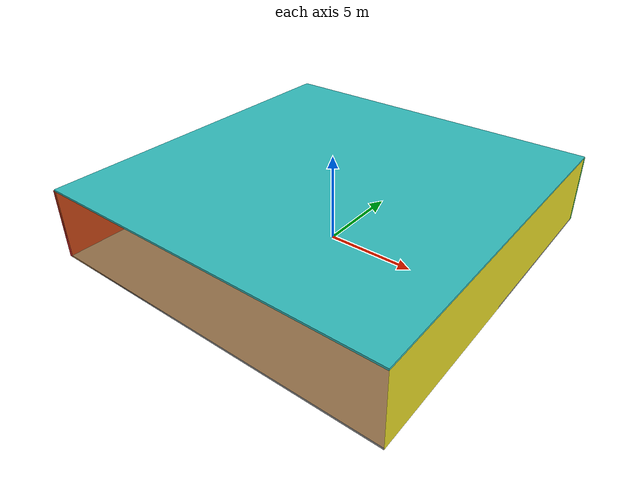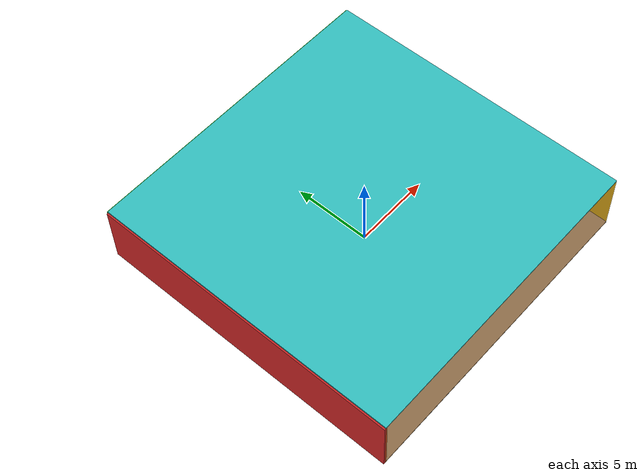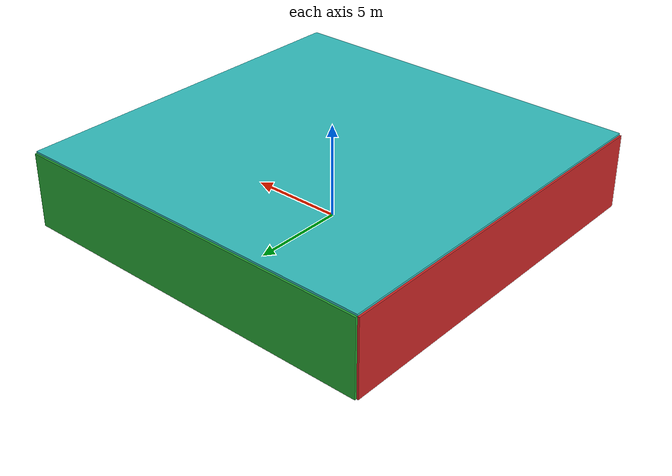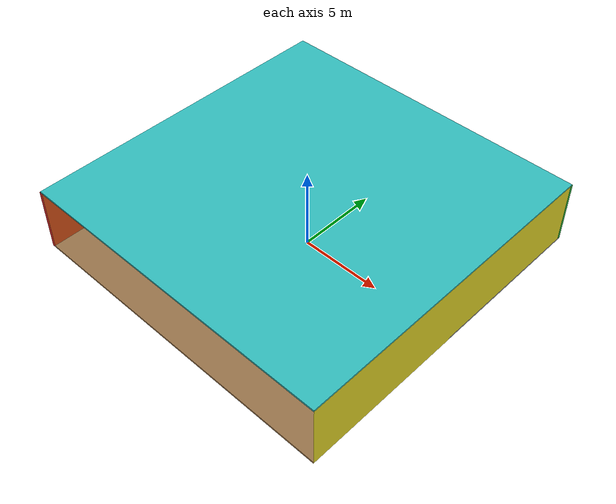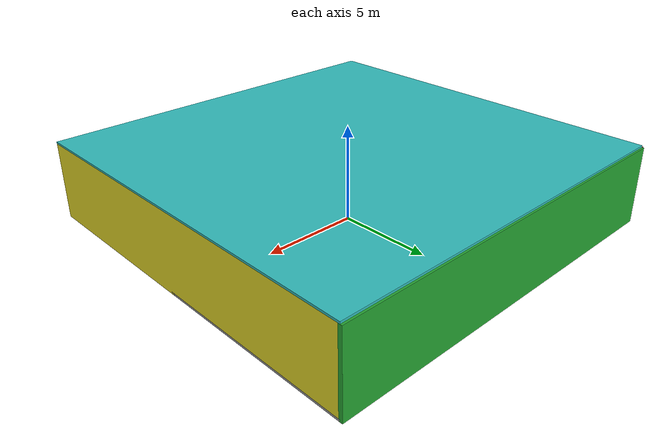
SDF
<sdf version="1.4">
 <world name="default">
  <physics type="ode">
   <max_step_size>0.001</max_step_size>
   <real_time_factor>1</real_time_factor>
   <real_time_update_rate>1000</real_time_update_rate>
   <gravity>0 0 -9.8</gravity>
  </physics>
  <scene><ambient>0.4 0.4 0.4 1</ambient><background>0.7 0.7 0.7 1</background><shadows>1</shadows></scene>
  <model name="Surrounding">
   <static>1</static>
   <link name="Ceiling">
    <collision name="Ceiling_Collision"><geometry><box><size>20 20 0.1</size></box></geometry></collision>
    <visual name="Ceiling_Visual">
     <geometry><box><size>20 20 0.1</size></box></geometry>
     <material>
      <script>
       <uri>file://media/materials/scripts/gazebo.material</uri>
       <name>Gazebo/TurquoiseGlowOutline</name>
      </script>
     </material>
    </visual>
    <pose>0 0 4.05 0 0 0</pose>
   </link>
   <link name="Wall_South">
    <collision name="Wall_South_Collision">
     <geometry><box><size>20 0 4</size></box></geometry>
     <pose>0 0 2 0 -0 0</pose>
    </collision>
    <visual name="Wall_South_Visual">
     <pose>0 0 2 0 -0 0</pose>
     <geometry><box><size>20 0 4</size></box></geometry>
     <material>
      <script>
       <uri>file://media/materials/scripts/gazebo.material</uri>
       <name>Gazebo/OrangeTransparent</name>
      </script>
     </material>
    </visual>
    <velocity_decay><linear>0</linear><angular>0</angular></velocity_decay>
    <pose>0 -10 0 0 -0 0</pose>
   </link>
   <link name="Wall_East">
    <collision name="Wall_21_Collision">
     <geometry><box><size>20 0 4</size></box></geometry>
     <pose>0 0 2 0 -0 0</pose>
    </collision>
    <visual name="Wall_21_Visual">
     <pose>0 0 2 0 -0 0</pose>
     <geometry><box><size>20 0 4</size></box></geometry>
     <material>
      <script><uri>file://media/materials/scripts/gazebo.material</uri><name>Gazebo/Yellow</name></script>
     </material>
    </visual>
    <velocity_decay><linear>0</linear><angular>0</angular></velocity_decay>
    <pose>10 0 0 0 -0 1.5708</pose>
   </link>
   <link name="Wall_North">
    <collision name="Wall_22_Collision">
     <geometry><box><size>20 0.2 4</size></box></geometry>
     <pose>0 0 2 0 -0 0</pose>
    </collision>
    <visual name="Wall_22_Visual">
     <pose>0 0 2 0 -0 0</pose>
     <geometry><box><size>20 0.2 4</size></box></geometry>
     <material>
      <script><uri>file://media/materials/scripts/gazebo.material</uri><name>Gazebo/Green</name></script>
     </material>
    </visual>
    <velocity_decay><linear>0</linear><angular>0</angular></velocity_decay>
    <pose>0 10 0 0 -0 0</pose>
   </link>
   <link name="Wall_West">
    <collision name="Wall_23_Collision">
     <geometry><box><size>20 0.2 4</size></box></geometry>
     <pose>0 0 2 0 -0 0</pose>
    </collision>
    <visual name="Wall_23_Visual">
     <pose>0 0 2 0 -0 0</pose>
     <geometry><box><size>20 0.2 4</size></box></geometry>
     <material>
      <script><uri>file://media/materials/scripts/gazebo.material</uri><name>Gazebo/RedBright</name></script>
     </material>
    </visual>
    <velocity_decay><linear>0</linear><angular>0</angular></velocity_decay>
    <pose>-10 0 0 0 0 -1.5708</pose>
   </link>
   <link name="Ground_link">
    <collision name="collision">
     <pose>0 0 .05 0 -0 0</pose>
     <geometry><box><size>20 20 0.1</size></box></geometry>
    </collision>
    <visual name="visual">
     <pose>0 0 .05 0 -0 0</pose>
     <geometry><box><size>20 20 0.1</size></box></geometry>
     <material>
      <script><uri>file://media/materials/scripts/gazebo.material</uri><name>Gazebo/GreyGradientSky</name></script>
     </material>
    </visual>
   </link>
   <static>1</static>
  </model>
  <spherical_coordinates>
   <surface_model>EARTH_WGS84</surface_model>
   <latitude_deg>0</latitude_deg>
   <longitude_deg>0</longitude_deg>
   <elevation>0</elevation>
   <heading_deg>0</heading_deg>
  </spherical_coordinates>
  <light name="lightball_0" type="diffuse">
   <diffuse>0.8 0.8 0.8 1</diffuse>
   <specular>0.2 0.2 0.2 1</specular>
   <attenuation>
    <range>100</range>
    <constant>0.7</constant>
    <linear>0.01</linear>
    <quadratic>0.001</quadratic>
   </attenuation>
   <direction>-0.5 0.1 -0.9</direction>
   <pose>-3.60007056315 4.95218424611 3.49820728028 0 0 0</pose>
  </light>
  <light name="lightball_1" type="diffuse">
   <diffuse>0.8 0.8 0.8 1</diffuse>
   <specular>0.2 0.2 0.2 1</specular>
   <attenuation>
    <range>100</range>
    <constant>0.7</constant>
    <linear>0.01</linear>
    <quadratic>0.001</quadratic>
   </attenuation>
   <direction>-0.5 0.1 -0.9</direction>
   <pose>-3.64975076076 -7.08715919173 2.24664057174 0 0 0</pose>
  </light>
  <light name="lightball_2" type="diffuse">
   <diffuse>0.8 0.8 0.8 1</diffuse>
   <specular>0.2 0.2 0.2 1</specular>
   <attenuation>
    <range>100</range>
    <constant>0.7</constant>
    <linear>0.01</linear>
    <quadratic>0.001</quadratic>
   </attenuation>
   <direction>-0.5 0.1 -0.9</direction>
   <pose>-0.658415053982 -4.54271752881 2.12613304537 0 0 0</pose>
  </light>
  <light name="lightball_3" type="diffuse">
   <diffuse>0.8 0.8 0.8 1</diffuse>
   <specular>0.2 0.2 0.2 1</specular>
   <attenuation>
    <range>100</range>
    <constant>0.7</constant>
    <linear>0.01</linear>
    <quadratic>0.001</quadratic>
   </attenuation>
   <direction>-0.5 0.1 -0.9</direction>
   <pose>-5.90838660389 8.55200022755 3.4423907601 0 0 0</pose>
  </light>
  <include>
   <uri>model://robocup_3Dsim_goal</uri>
   <pose>0.783298672562 -1.43229736621 0 0 0 0.911012905751</pose>
  </include>
  <include>
   <uri>model://construction_cone</uri>
   <pose>1.26149282182 1.40211397286 0 0 0 0.639340384687</pose>
  </include>
  <include>
   <uri>model://robocup_3Dsim_goal</uri>
   <pose>7.47411108929 2.03426530624 0 0 0 2.72311235646</pose>
  </include>
 </world>
</sdf>

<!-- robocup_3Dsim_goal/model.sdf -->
<sdf version="1.5">
  <model name="robocup_3d_goal">
    <static>true</static>
    <link name="left_post">
      <pose>0 1.05 0.45 0 0 0</pose>
      <collision name="collision">
        <geometry>
          <cylinder>
            <radius>0.05</radius>
            <length>0.9</length>
          </cylinder>
        </geometry>
      </collision>
      <visual name="visual">
        <geometry>
          <cylinder>
            <radius>0.05</radius>
            <length>0.9</length>
          </cylinder>
        </geometry>
        <material>
          <script>
            <uri>file://media/materials/scripts/gazebo.material</uri>
            <name>Gazebo/ZincYellow</name>
          </script>
        </material>
      </visual>
    </link>
    <link name="left_support_horiz_lower">
      <pose>0.30 1.05 0.01 0 0 0</pose>
      <collision name="collision">
        <geometry>
          <box>
            <size>0.50 0.02 0.02</size>
          </box>
        </geometry>
      </collision>
      <visual name="visual">
        <geometry>
          <box>
            <size>0.50 0.02 0.02</size>
          </box>
        </geometry>
        <material>
          <script>
            <uri>file://media/materials/scripts/gazebo.material</uri>
            <name>Gazebo/White</name>
          </script>
        </material>
      </visual>
    </link>
    <link name="left_support_horiz_upper">
      <pose>0.30 1.05 0.79 0 0 0</pose>
      <collision name="collision">
        <geometry>
          <box>
            <size>0.50 0.02 0.02</size>
          </box>
        </geometry>
      </collision>
      <visual name="visual">
        <geometry>
          <box>
            <size>0.50 0.02 0.02</size>
          </box>
        </geometry>
        <material>
          <script>
            <uri>file://media/materials/scripts/gazebo.material</uri>
            <name>Gazebo/White</name>
          </script>
        </material>
      </visual>
    </link>
    <link name="left_support_vertical">
      <pose>0.56 1.05 0.4 0 1.5708 0</pose>
      <collision name="collision">
        <geometry>
          <box>
            <size>0.80 0.02 0.02</size>
          </box>
        </geometry>
      </collision>
      <visual name="visual">
        <geometry>
          <box>
            <size>0.80 0.02 0.02</size>
          </box>
        </geometry>
        <material>
          <script>
            <uri>file://media/materials/scripts/gazebo.material</uri>
            <name>Gazebo/White</name>
          </script>
        </material>
      </visual>
    </link>
    <link name="right_support_horiz_lower">
      <pose>0.30 -1.05 0.01 0 0 0</pose>
      <collision name="collision">
        <geometry>
          <box>
            <size>0.50 0.02 0.02</size>
          </box>
        </geometry>
      </collision>
      <visual name="visual">
        <geometry>
          <box>
            <size>0.50 0.02 0.02</size>
          </box>
        </geometry>
        <material>
          <script>
            <uri>file://media/materials/scripts/gazebo.material</uri>
            <name>Gazebo/White</name>
          </script>
        </material>
      </visual>
    </link>
    <link name="right_support_horiz_upper">
      <pose>0.30 -1.05 0.79 0 0 0</pose>
      <collision name="collision">
        <geometry>
          <box>
            <size>0.50 0.02 0.02</size>
          </box>
        </geometry>
      </collision>
      <visual name="visual">
        <geometry>
          <box>
            <size>0.50 0.02 0.02</size>
          </box>
        </geometry>
        <material>
          <script>
            <uri>file://media/materials/scripts/gazebo.material</uri>
            <name>Gazebo/White</name>
          </script>
        </material>
      </visual>
    </link>
    <link name="right_support_vertical">
      <pose>0.56 -1.05 0.4 0 1.5708 0</pose>
      <collision name="collision">
        <geometry>
          <box>
            <size>0.80 0.02 0.02</size>
          </box>
        </geometry>
      </collision>
      <visual name="visual">
        <geometry>
          <box>
            <size>0.80 0.02 0.02</size>
          </box>
        </geometry>
        <material>
          <script>
            <uri>file://media/materials/scripts/gazebo.material</uri>
            <name>Gazebo/White</name>
          </script>
        </material>
      </visual>
    </link>
    <link name="center_support_horiz_lower">
      <pose>0.56 0 0.01 0 1.5708 0</pose>
      <collision name="collision">
        <geometry>
          <box>
            <size>0.02 2.08 0.02</size>
          </box>
        </geometry>
      </collision>
      <visual name="visual">
        <geometry>
          <box>
            <size>0.02 2.08 0.02</size>
          </box>
        </geometry>
        <material>
          <script>
            <uri>file://media/materials/scripts/gazebo.material</uri>
            <name>Gazebo/White</name>
          </script>
        </material>
      </visual>
    </link>
    <link name="center_support_horiz_upper">
      <pose>0.56 0 0.79 0 1.5708 0</pose>
      <collision name="collision">
        <geometry>
          <box>
            <size>0.02 2.08 0.02</size>
          </box>
        </geometry>
      </collision>
      <visual name="visual">
        <geometry>
          <box>
            <size>0.02 2.08 0.02</size>
          </box>
        </geometry>
        <material>
          <script>
            <uri>file://media/materials/scripts/gazebo.material</uri>
            <name>Gazebo/White</name>
          </script>
        </material>
      </visual>
    </link>
    <link name="right_post">
      <pose>0 -1.05 0.45 0 0 0</pose>
      <collision name="collision">
        <geometry>
          <cylinder>
            <radius>0.05</radius>
            <length>0.9</length>
          </cylinder>
        </geometry>
      </collision>
      <visual name="visual">
        <geometry>
          <cylinder>
            <radius>0.05</radius>
            <length>0.9</length>
          </cylinder>
        </geometry>
        <material>
          <script>
            <uri>file://media/materials/scripts/gazebo.material</uri>
            <name>Gazebo/ZincYellow</name>
          </script>
        </material>
      </visual>
    </link>
    <link name="crossbar">
      <pose>0 0 0.85 1.57 1.57 0</pose>
      <collision name="collision">
        <geometry>
          <cylinder>
            <radius>0.05</radius>
            <length>2.0</length>
          </cylinder>
        </geometry>
      </collision>
      <visual name="visual">
        <geometry>
          <cylinder>
            <radius>0.05</radius>
            <length>2.0</length>
          </cylinder>
        </geometry>
        <material>
          <script>
            <uri>file://media/materials/scripts/gazebo.material</uri>
            <name>Gazebo/ZincYellow</name>
          </script>
        </material>
      </visual>
    </link>
    <link name="center_net">
      <pose>0.56 0 0.40 0 0 0</pose>
      <collision name="collision">
        <geometry>
          <box>
            <size>0.01 2.1 0.80</size>
          </box>
        </geometry>
      </collision>
      <visual name="visual">
        <geometry>
          <box>
            <size>0.01 2.1 0.80</size>
          </box>
        </geometry>
        <material>
          <script>
            <uri>model://../model_source/models/robocup09_spl_field/materials/scripts/</uri>
            <uri>model://../model_source/models/robocup09_spl_field/materials/textures/</uri>
            <name>RoboCup/Net</name>
          </script>
        </material>
      </visual>
    </link>
    <link name="left_net">
      <pose>0.30 1.05 0.40 0 0 0</pose>
      <collision name="collision">
        <geometry>
          <box>
            <size>0.50 0.01 0.76</size>
          </box>
        </geometry>
      </collision>
      <visual name="visual">
        <geometry>
          <box>
            <size>0.50 0.01 0.76</size>
          </box>
        </geometry>
        <material>
          <script>
            <uri>model://../model_source/models/robocup09_spl_field/materials/scripts/</uri>
            <uri>model://../model_source/models/robocup09_spl_field/materials/textures/</uri>
            <name>RoboCup/Net</name>
          </script>
        </material>
      </visual>
    </link>
    <link name="right_net">
      <pose>0.30 -1.05 0.40 0 0 0</pose>
      <collision name="collision">
        <geometry>
          <box>
            <size>0.50 0.01 0.76</size>
          </box>
        </geometry>
      </collision>
      <visual name="visual">
        <geometry>
          <box>
            <size>0.50 0.01 0.76</size>
          </box>
        </geometry>
        <material>
          <script>
            <uri>model://../model_source/models/robocup09_spl_field/materials/scripts/</uri>
            <uri>model://../model_source/models/robocup09_spl_field/materials/textures/</uri>
            <name>RoboCup/Net</name>
          </script>
        </material>
      </visual>
    </link>
  </model>
</sdf>

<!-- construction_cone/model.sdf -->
<sdf version="1.5">
  <model name="Construction Cone">
    <link name="link">
      <collision name="collision">
        <geometry>
          <mesh>
            <scale>10 10 10</scale>
            <uri>file://isr-testbed/construction_cone/meshes/construction_cone.dae</uri>
          </mesh>
        </geometry>
      </collision>
      <visual name="visual">
        <geometry>
          <mesh>
            <scale>10 10 10</scale>
            <uri>file://isr-testbed/construction_cone/meshes/construction_cone.dae</uri>
          </mesh>
        </geometry>
      </visual>
    </link>
  </model>
</sdf>
